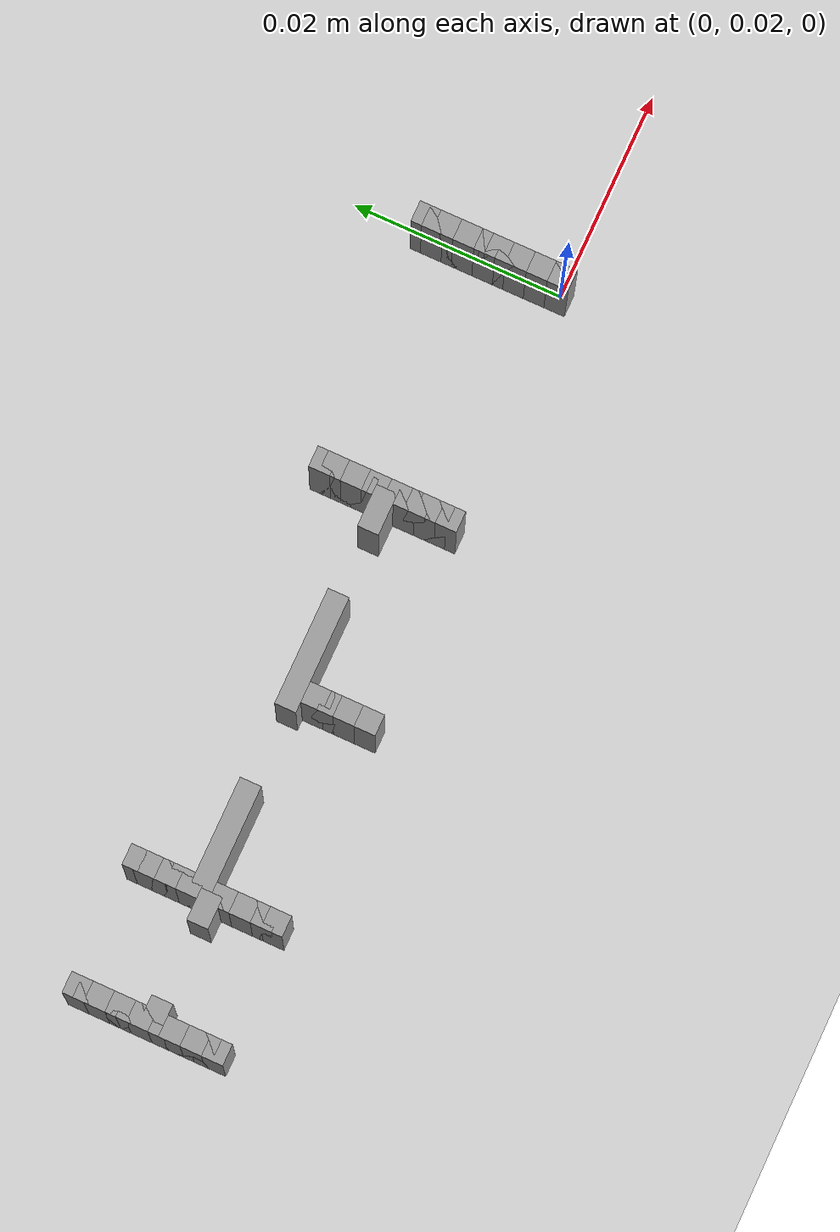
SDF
<sdf version="1.6">
 <world name="GridMap">
  <include><uri>model://sun</uri></include>
  <include><uri>model://ground_plane</uri></include>
  <model name="GridMap">
   <link name="Wall_(43.0,19.0)">
    <collision name="Wall_(43.0,19.0)_Collision">
     <geometry><box><size>0.002 0.002 0.01</size></box></geometry>
     <pose>-0.043000000000000003 0.019 0.005 0 -0 0</pose>
    </collision>
    <inertial>
     <mass>0.5</mass>
     <pose>0 0.01 0 0 0 0</pose>
     <inertia><ixx>0.004</ixx><ixy>0.001</ixy><ixz>0</ixz><iyy>0.006</iyy><iyz>0</iyz><izz>0.007</izz></inertia>
    </inertial>
    <visual name="Wall_(43.0,19.0)_Visual">
     <geometry><box><size>0.002 0.002 0.01</size></box></geometry>
     <pose>-0.043000000000000003 0.019 0.005 0 -0 0</pose>
     <material>
      <script><uri>file://media/materials/scripts/gazebo.material</uri><name>Gazebo/Grey</name></script>
      <ambient>1 1 1 1</ambient>
     </material>
     <meta><layer>0</layer></meta>
    </visual>
   </link>
   <link name="Wall_(62.0,19.0)">
    <collision name="Wall_(62.0,19.0)_Collision">
     <geometry><box><size>0.002 0.002 0.01</size></box></geometry>
     <pose>-0.062 0.019 0.005 0 -0 0</pose>
    </collision>
    <inertial>
     <mass>0.5</mass>
     <pose>0 0.01 0 0 0 0</pose>
     <inertia><ixx>0.004</ixx><ixy>0.001</ixy><ixz>0</ixz><iyy>0.006</iyy><iyz>0</iyz><izz>0.007</izz></inertia>
    </inertial>
    <visual name="Wall_(62.0,19.0)_Visual">
     <geometry><box><size>0.002 0.002 0.01</size></box></geometry>
     <pose>-0.062 0.019 0.005 0 -0 0</pose>
     <material>
      <script><uri>file://media/materials/scripts/gazebo.material</uri><name>Gazebo/Grey</name></script>
      <ambient>1 1 1 1</ambient>
     </material>
     <meta><layer>0</layer></meta>
    </visual>
   </link>
   <link name="Wall_(74.0,19.0)">
    <collision name="Wall_(74.0,19.0)_Collision">
     <geometry><box><size>0.002 0.002 0.01</size></box></geometry>
     <pose>-0.074 0.019 0.005 0 -0 0</pose>
    </collision>
    <inertial>
     <mass>0.5</mass>
     <pose>0 0.01 0 0 0 0</pose>
     <inertia><ixx>0.004</ixx><ixy>0.001</ixy><ixz>0</ixz><iyy>0.006</iyy><iyz>0</iyz><izz>0.007</izz></inertia>
    </inertial>
    <visual name="Wall_(74.0,19.0)_Visual">
     <geometry><box><size>0.002 0.002 0.01</size></box></geometry>
     <pose>-0.074 0.019 0.005 0 -0 0</pose>
     <material>
      <script><uri>file://media/materials/scripts/gazebo.material</uri><name>Gazebo/Grey</name></script>
      <ambient>1 1 1 1</ambient>
     </material>
     <meta><layer>0</layer></meta>
    </visual>
   </link>
   <link name="Wall_(0.5,20.0)">
    <collision name="Wall_(0.5,20.0)_Collision">
     <geometry><box><size>0.002 0.002 0.01</size></box></geometry>
     <pose>-0.0005 0.02 0.005 0 -0 0</pose>
    </collision>
    <inertial>
     <mass>0.5</mass>
     <pose>0 0.01 0 0 0 0</pose>
     <inertia><ixx>0.004</ixx><ixy>0.001</ixy><ixz>0</ixz><iyy>0.006</iyy><iyz>0</iyz><izz>0.007</izz></inertia>
    </inertial>
    <visual name="Wall_(0.5,20.0)_Visual">
     <geometry><box><size>0.002 0.002 0.01</size></box></geometry>
     <pose>-0.0005 0.02 0.005 0 -0 0</pose>
     <material>
      <script><uri>file://media/materials/scripts/gazebo.material</uri><name>Gazebo/Grey</name></script>
      <ambient>1 1 1 1</ambient>
     </material>
     <meta><layer>0</layer></meta>
    </visual>
   </link>
   <link name="Wall_(24.0,20.0)">
    <collision name="Wall_(24.0,20.0)_Collision">
     <geometry><box><size>0.002 0.002 0.01</size></box></geometry>
     <pose>-0.024 0.02 0.005 0 -0 0</pose>
    </collision>
    <inertial>
     <mass>0.5</mass>
     <pose>0 0.01 0 0 0 0</pose>
     <inertia><ixx>0.004</ixx><ixy>0.001</ixy><ixz>0</ixz><iyy>0.006</iyy><iyz>0</iyz><izz>0.007</izz></inertia>
    </inertial>
    <visual name="Wall_(24.0,20.0)_Visual">
     <geometry><box><size>0.002 0.002 0.01</size></box></geometry>
     <pose>-0.024 0.02 0.005 0 -0 0</pose>
     <material>
      <script><uri>file://media/materials/scripts/gazebo.material</uri><name>Gazebo/Grey</name></script>
      <ambient>1 1 1 1</ambient>
     </material>
     <meta><layer>0</layer></meta>
    </visual>
   </link>
   <link name="Wall_(43.0,20.0)">
    <collision name="Wall_(43.0,20.0)_Collision">
     <geometry><box><size>0.002 0.002 0.01</size></box></geometry>
     <pose>-0.043000000000000003 0.02 0.005 0 -0 0</pose>
    </collision>
    <inertial>
     <mass>0.5</mass>
     <pose>0 0.01 0 0 0 0</pose>
     <inertia><ixx>0.004</ixx><ixy>0.001</ixy><ixz>0</ixz><iyy>0.006</iyy><iyz>0</iyz><izz>0.007</izz></inertia>
    </inertial>
    <visual name="Wall_(43.0,20.0)_Visual">
     <geometry><box><size>0.002 0.002 0.01</size></box></geometry>
     <pose>-0.043000000000000003 0.02 0.005 0 -0 0</pose>
     <material>
      <script><uri>file://media/materials/scripts/gazebo.material</uri><name>Gazebo/Grey</name></script>
      <ambient>1 1 1 1</ambient>
     </material>
     <meta><layer>0</layer></meta>
    </visual>
   </link>
   <link name="Wall_(62.0,20.0)">
    <collision name="Wall_(62.0,20.0)_Collision">
     <geometry><box><size>0.002 0.002 0.01</size></box></geometry>
     <pose>-0.062 0.02 0.005 0 -0 0</pose>
    </collision>
    <inertial>
     <mass>0.5</mass>
     <pose>0 0.01 0 0 0 0</pose>
     <inertia><ixx>0.004</ixx><ixy>0.001</ixy><ixz>0</ixz><iyy>0.006</iyy><iyz>0</iyz><izz>0.007</izz></inertia>
    </inertial>
    <visual name="Wall_(62.0,20.0)_Visual">
     <geometry><box><size>0.002 0.002 0.01</size></box></geometry>
     <pose>-0.062 0.02 0.005 0 -0 0</pose>
     <material>
      <script><uri>file://media/materials/scripts/gazebo.material</uri><name>Gazebo/Grey</name></script>
      <ambient>1 1 1 1</ambient>
     </material>
     <meta><layer>0</layer></meta>
    </visual>
   </link>
   <link name="Wall_(74.0,20.0)">
    <collision name="Wall_(74.0,20.0)_Collision">
     <geometry><box><size>0.002 0.002 0.01</size></box></geometry>
     <pose>-0.074 0.02 0.005 0 -0 0</pose>
    </collision>
    <inertial>
     <mass>0.5</mass>
     <pose>0 0.01 0 0 0 0</pose>
     <inertia><ixx>0.004</ixx><ixy>0.001</ixy><ixz>0</ixz><iyy>0.006</iyy><iyz>0</iyz><izz>0.007</izz></inertia>
    </inertial>
    <visual name="Wall_(74.0,20.0)_Visual">
     <geometry><box><size>0.002 0.002 0.01</size></box></geometry>
     <pose>-0.074 0.02 0.005 0 -0 0</pose>
     <material>
      <script><uri>file://media/materials/scripts/gazebo.material</uri><name>Gazebo/Grey</name></script>
      <ambient>1 1 1 1</ambient>
     </material>
     <meta><layer>0</layer></meta>
    </visual>
   </link>
   <link name="Wall_(0.5,21.0)">
    <collision name="Wall_(0.5,21.0)_Collision">
     <geometry><box><size>0.002 0.002 0.01</size></box></geometry>
     <pose>-0.0005 0.021 0.005 0 -0 0</pose>
    </collision>
    <inertial>
     <mass>0.5</mass>
     <pose>0 0.01 0 0 0 0</pose>
     <inertia><ixx>0.004</ixx><ixy>0.001</ixy><ixz>0</ixz><iyy>0.006</iyy><iyz>0</iyz><izz>0.007</izz></inertia>
    </inertial>
    <visual name="Wall_(0.5,21.0)_Visual">
     <geometry><box><size>0.002 0.002 0.01</size></box></geometry>
     <pose>-0.0005 0.021 0.005 0 -0 0</pose>
     <material>
      <script><uri>file://media/materials/scripts/gazebo.material</uri><name>Gazebo/Grey</name></script>
      <ambient>1 1 1 1</ambient>
     </material>
     <meta><layer>0</layer></meta>
    </visual>
   </link>
   <link name="Wall_(24.0,21.0)">
    <collision name="Wall_(24.0,21.0)_Collision">
     <geometry><box><size>0.002 0.002 0.01</size></box></geometry>
     <pose>-0.024 0.021 0.005 0 -0 0</pose>
    </collision>
    <inertial>
     <mass>0.5</mass>
     <pose>0 0.01 0 0 0 0</pose>
     <inertia><ixx>0.004</ixx><ixy>0.001</ixy><ixz>0</ixz><iyy>0.006</iyy><iyz>0</iyz><izz>0.007</izz></inertia>
    </inertial>
    <visual name="Wall_(24.0,21.0)_Visual">
     <geometry><box><size>0.002 0.002 0.01</size></box></geometry>
     <pose>-0.024 0.021 0.005 0 -0 0</pose>
     <material>
      <script><uri>file://media/materials/scripts/gazebo.material</uri><name>Gazebo/Grey</name></script>
      <ambient>1 1 1 1</ambient>
     </material>
     <meta><layer>0</layer></meta>
    </visual>
   </link>
   <link name="Wall_(43.0,21.0)">
    <collision name="Wall_(43.0,21.0)_Collision">
     <geometry><box><size>0.002 0.002 0.01</size></box></geometry>
     <pose>-0.043000000000000003 0.021 0.005 0 -0 0</pose>
    </collision>
    <inertial>
     <mass>0.5</mass>
     <pose>0 0.01 0 0 0 0</pose>
     <inertia><ixx>0.004</ixx><ixy>0.001</ixy><ixz>0</ixz><iyy>0.006</iyy><iyz>0</iyz><izz>0.007</izz></inertia>
    </inertial>
    <visual name="Wall_(43.0,21.0)_Visual">
     <geometry><box><size>0.002 0.002 0.01</size></box></geometry>
     <pose>-0.043000000000000003 0.021 0.005 0 -0 0</pose>
     <material>
      <script><uri>file://media/materials/scripts/gazebo.material</uri><name>Gazebo/Grey</name></script>
      <ambient>1 1 1 1</ambient>
     </material>
     <meta><layer>0</layer></meta>
    </visual>
   </link>
   <link name="Wall_(62.0,21.0)">
    <collision name="Wall_(62.0,21.0)_Collision">
     <geometry><box><size>0.002 0.002 0.01</size></box></geometry>
     <pose>-0.062 0.021 0.005 0 -0 0</pose>
    </collision>
    <inertial>
     <mass>0.5</mass>
     <pose>0 0.01 0 0 0 0</pose>
     <inertia><ixx>0.004</ixx><ixy>0.001</ixy><ixz>0</ixz><iyy>0.006</iyy><iyz>0</iyz><izz>0.007</izz></inertia>
    </inertial>
    <visual name="Wall_(62.0,21.0)_Visual">
     <geometry><box><size>0.002 0.002 0.01</size></box></geometry>
     <pose>-0.062 0.021 0.005 0 -0 0</pose>
     <material>
      <script><uri>file://media/materials/scripts/gazebo.material</uri><name>Gazebo/Grey</name></script>
      <ambient>1 1 1 1</ambient>
     </material>
     <meta><layer>0</layer></meta>
    </visual>
   </link>
   <link name="Wall_(74.0,21.0)">
    <collision name="Wall_(74.0,21.0)_Collision">
     <geometry><box><size>0.002 0.002 0.01</size></box></geometry>
     <pose>-0.074 0.021 0.005 0 -0 0</pose>
    </collision>
    <inertial>
     <mass>0.5</mass>
     <pose>0 0.01 0 0 0 0</pose>
     <inertia><ixx>0.004</ixx><ixy>0.001</ixy><ixz>0</ixz><iyy>0.006</iyy><iyz>0</iyz><izz>0.007</izz></inertia>
    </inertial>
    <visual name="Wall_(74.0,21.0)_Visual">
     <geometry><box><size>0.002 0.002 0.01</size></box></geometry>
     <pose>-0.074 0.021 0.005 0 -0 0</pose>
     <material>
      <script><uri>file://media/materials/scripts/gazebo.material</uri><name>Gazebo/Grey</name></script>
      <ambient>1 1 1 1</ambient>
     </material>
     <meta><layer>0</layer></meta>
    </visual>
   </link>
   <link name="Wall_(0.5,22.0)">
    <collision name="Wall_(0.5,22.0)_Collision">
     <geometry><box><size>0.002 0.002 0.01</size></box></geometry>
     <pose>-0.0005 0.022 0.005 0 -0 0</pose>
    </collision>
    <inertial>
     <mass>0.5</mass>
     <pose>0 0.01 0 0 0 0</pose>
     <inertia><ixx>0.004</ixx><ixy>0.001</ixy><ixz>0</ixz><iyy>0.006</iyy><iyz>0</iyz><izz>0.007</izz></inertia>
    </inertial>
    <visual name="Wall_(0.5,22.0)_Visual">
     <geometry><box><size>0.002 0.002 0.01</size></box></geometry>
     <pose>-0.0005 0.022 0.005 0 -0 0</pose>
     <material>
      <script><uri>file://media/materials/scripts/gazebo.material</uri><name>Gazebo/Grey</name></script>
      <ambient>1 1 1 1</ambient>
     </material>
     <meta><layer>0</layer></meta>
    </visual>
   </link>
   <link name="Wall_(24.0,22.0)">
    <collision name="Wall_(24.0,22.0)_Collision">
     <geometry><box><size>0.002 0.002 0.01</size></box></geometry>
     <pose>-0.024 0.022 0.005 0 -0 0</pose>
    </collision>
    <inertial>
     <mass>0.5</mass>
     <pose>0 0.01 0 0 0 0</pose>
     <inertia><ixx>0.004</ixx><ixy>0.001</ixy><ixz>0</ixz><iyy>0.006</iyy><iyz>0</iyz><izz>0.007</izz></inertia>
    </inertial>
    <visual name="Wall_(24.0,22.0)_Visual">
     <geometry><box><size>0.002 0.002 0.01</size></box></geometry>
     <pose>-0.024 0.022 0.005 0 -0 0</pose>
     <material>
      <script><uri>file://media/materials/scripts/gazebo.material</uri><name>Gazebo/Grey</name></script>
      <ambient>1 1 1 1</ambient>
     </material>
     <meta><layer>0</layer></meta>
    </visual>
   </link>
   <link name="Wall_(43.0,22.0)">
    <collision name="Wall_(43.0,22.0)_Collision">
     <geometry><box><size>0.002 0.002 0.01</size></box></geometry>
     <pose>-0.043000000000000003 0.022 0.005 0 -0 0</pose>
    </collision>
    <inertial>
     <mass>0.5</mass>
     <pose>0 0.01 0 0 0 0</pose>
     <inertia><ixx>0.004</ixx><ixy>0.001</ixy><ixz>0</ixz><iyy>0.006</iyy><iyz>0</iyz><izz>0.007</izz></inertia>
    </inertial>
    <visual name="Wall_(43.0,22.0)_Visual">
     <geometry><box><size>0.002 0.002 0.01</size></box></geometry>
     <pose>-0.043000000000000003 0.022 0.005 0 -0 0</pose>
     <material>
      <script><uri>file://media/materials/scripts/gazebo.material</uri><name>Gazebo/Grey</name></script>
      <ambient>1 1 1 1</ambient>
     </material>
     <meta><layer>0</layer></meta>
    </visual>
   </link>
   <link name="Wall_(62.0,22.0)">
    <collision name="Wall_(62.0,22.0)_Collision">
     <geometry><box><size>0.002 0.002 0.01</size></box></geometry>
     <pose>-0.062 0.022 0.005 0 -0 0</pose>
    </collision>
    <inertial>
     <mass>0.5</mass>
     <pose>0 0.01 0 0 0 0</pose>
     <inertia><ixx>0.004</ixx><ixy>0.001</ixy><ixz>0</ixz><iyy>0.006</iyy><iyz>0</iyz><izz>0.007</izz></inertia>
    </inertial>
    <visual name="Wall_(62.0,22.0)_Visual">
     <geometry><box><size>0.002 0.002 0.01</size></box></geometry>
     <pose>-0.062 0.022 0.005 0 -0 0</pose>
     <material>
      <script><uri>file://media/materials/scripts/gazebo.material</uri><name>Gazebo/Grey</name></script>
      <ambient>1 1 1 1</ambient>
     </material>
     <meta><layer>0</layer></meta>
    </visual>
   </link>
   <link name="Wall_(74.0,22.0)">
    <collision name="Wall_(74.0,22.0)_Collision">
     <geometry><box><size>0.002 0.002 0.01</size></box></geometry>
     <pose>-0.074 0.022 0.005 0 -0 0</pose>
    </collision>
    <inertial>
     <mass>0.5</mass>
     <pose>0 0.01 0 0 0 0</pose>
     <inertia><ixx>0.004</ixx><ixy>0.001</ixy><ixz>0</ixz><iyy>0.006</iyy><iyz>0</iyz><izz>0.007</izz></inertia>
    </inertial>
    <visual name="Wall_(74.0,22.0)_Visual">
     <geometry><box><size>0.002 0.002 0.01</size></box></geometry>
     <pose>-0.074 0.022 0.005 0 -0 0</pose>
     <material>
      <script><uri>file://media/materials/scripts/gazebo.material</uri><name>Gazebo/Grey</name></script>
      <ambient>1 1 1 1</ambient>
     </material>
     <meta><layer>0</layer></meta>
    </visual>
   </link>
   <link name="Wall_(0.5,23.0)">
    <collision name="Wall_(0.5,23.0)_Collision">
     <geometry><box><size>0.002 0.002 0.01</size></box></geometry>
     <pose>-0.0005 0.023 0.005 0 -0 0</pose>
    </collision>
    <inertial>
     <mass>0.5</mass>
     <pose>0 0.01 0 0 0 0</pose>
     <inertia><ixx>0.004</ixx><ixy>0.001</ixy><ixz>0</ixz><iyy>0.006</iyy><iyz>0</iyz><izz>0.007</izz></inertia>
    </inertial>
    <visual name="Wall_(0.5,23.0)_Visual">
     <geometry><box><size>0.002 0.002 0.01</size></box></geometry>
     <pose>-0.0005 0.023 0.005 0 -0 0</pose>
     <material>
      <script><uri>file://media/materials/scripts/gazebo.material</uri><name>Gazebo/Grey</name></script>
      <ambient>1 1 1 1</ambient>
     </material>
     <meta><layer>0</layer></meta>
    </visual>
   </link>
   <link name="Wall_(24.0,23.0)">
    <collision name="Wall_(24.0,23.0)_Collision">
     <geometry><box><size>0.002 0.002 0.01</size></box></geometry>
     <pose>-0.024 0.023 0.005 0 -0 0</pose>
    </collision>
    <inertial>
     <mass>0.5</mass>
     <pose>0 0.01 0 0 0 0</pose>
     <inertia><ixx>0.004</ixx><ixy>0.001</ixy><ixz>0</ixz><iyy>0.006</iyy><iyz>0</iyz><izz>0.007</izz></inertia>
    </inertial>
    <visual name="Wall_(24.0,23.0)_Visual">
     <geometry><box><size>0.002 0.002 0.01</size></box></geometry>
     <pose>-0.024 0.023 0.005 0 -0 0</pose>
     <material>
      <script><uri>file://media/materials/scripts/gazebo.material</uri><name>Gazebo/Grey</name></script>
      <ambient>1 1 1 1</ambient>
     </material>
     <meta><layer>0</layer></meta>
    </visual>
   </link>
   <link name="Wall_(43.0,23.0)">
    <collision name="Wall_(43.0,23.0)_Collision">
     <geometry><box><size>0.002 0.002 0.01</size></box></geometry>
     <pose>-0.043000000000000003 0.023 0.005 0 -0 0</pose>
    </collision>
    <inertial>
     <mass>0.5</mass>
     <pose>0 0.01 0 0 0 0</pose>
     <inertia><ixx>0.004</ixx><ixy>0.001</ixy><ixz>0</ixz><iyy>0.006</iyy><iyz>0</iyz><izz>0.007</izz></inertia>
    </inertial>
    <visual name="Wall_(43.0,23.0)_Visual">
     <geometry><box><size>0.002 0.002 0.01</size></box></geometry>
     <pose>-0.043000000000000003 0.023 0.005 0 -0 0</pose>
     <material>
      <script><uri>file://media/materials/scripts/gazebo.material</uri><name>Gazebo/Grey</name></script>
      <ambient>1 1 1 1</ambient>
     </material>
     <meta><layer>0</layer></meta>
    </visual>
   </link>
   <link name="Wall_(62.0,23.0)">
    <collision name="Wall_(62.0,23.0)_Collision">
     <geometry><box><size>0.002 0.002 0.01</size></box></geometry>
     <pose>-0.062 0.023 0.005 0 -0 0</pose>
    </collision>
    <inertial>
     <mass>0.5</mass>
     <pose>0 0.01 0 0 0 0</pose>
     <inertia><ixx>0.004</ixx><ixy>0.001</ixy><ixz>0</ixz><iyy>0.006</iyy><iyz>0</iyz><izz>0.007</izz></inertia>
    </inertial>
    <visual name="Wall_(62.0,23.0)_Visual">
     <geometry><box><size>0.002 0.002 0.01</size></box></geometry>
     <pose>-0.062 0.023 0.005 0 -0 0</pose>
     <material>
      <script><uri>file://media/materials/scripts/gazebo.material</uri><name>Gazebo/Grey</name></script>
      <ambient>1 1 1 1</ambient>
     </material>
     <meta><layer>0</layer></meta>
    </visual>
   </link>
   <link name="Wall_(74.0,23.0)">
    <collision name="Wall_(74.0,23.0)_Collision">
     <geometry><box><size>0.002 0.002 0.01</size></box></geometry>
     <pose>-0.074 0.023 0.005 0 -0 0</pose>
    </collision>
    <inertial>
     <mass>0.5</mass>
     <pose>0 0.01 0 0 0 0</pose>
     <inertia><ixx>0.004</ixx><ixy>0.001</ixy><ixz>0</ixz><iyy>0.006</iyy><iyz>0</iyz><izz>0.007</izz></inertia>
    </inertial>
    <visual name="Wall_(74.0,23.0)_Visual">
     <geometry><box><size>0.002 0.002 0.01</size></box></geometry>
     <pose>-0.074 0.023 0.005 0 -0 0</pose>
     <material>
      <script><uri>file://media/materials/scripts/gazebo.material</uri><name>Gazebo/Grey</name></script>
      <ambient>1 1 1 1</ambient>
     </material>
     <meta><layer>0</layer></meta>
    </visual>
   </link>
   <link name="Wall_(0.5,24.0)">
    <collision name="Wall_(0.5,24.0)_Collision">
     <geometry><box><size>0.002 0.002 0.01</size></box></geometry>
     <pose>-0.0005 0.024 0.005 0 -0 0</pose>
    </collision>
    <inertial>
     <mass>0.5</mass>
     <pose>0 0.01 0 0 0 0</pose>
     <inertia><ixx>0.004</ixx><ixy>0.001</ixy><ixz>0</ixz><iyy>0.006</iyy><iyz>0</iyz><izz>0.007</izz></inertia>
    </inertial>
    <visual name="Wall_(0.5,24.0)_Visual">
     <geometry><box><size>0.002 0.002 0.01</size></box></geometry>
     <pose>-0.0005 0.024 0.005 0 -0 0</pose>
     <material>
      <script><uri>file://media/materials/scripts/gazebo.material</uri><name>Gazebo/Grey</name></script>
      <ambient>1 1 1 1</ambient>
     </material>
     <meta><layer>0</layer></meta>
    </visual>
   </link>
   <link name="Wall_(24.0,24.0)">
    <collision name="Wall_(24.0,24.0)_Collision">
     <geometry><box><size>0.002 0.002 0.01</size></box></geometry>
     <pose>-0.024 0.024 0.005 0 -0 0</pose>
    </collision>
    <inertial>
     <mass>0.5</mass>
     <pose>0 0.01 0 0 0 0</pose>
     <inertia><ixx>0.004</ixx><ixy>0.001</ixy><ixz>0</ixz><iyy>0.006</iyy><iyz>0</iyz><izz>0.007</izz></inertia>
    </inertial>
    <visual name="Wall_(24.0,24.0)_Visual">
     <geometry><box><size>0.002 0.002 0.01</size></box></geometry>
     <pose>-0.024 0.024 0.005 0 -0 0</pose>
     <material>
      <script><uri>file://media/materials/scripts/gazebo.material</uri><name>Gazebo/Grey</name></script>
      <ambient>1 1 1 1</ambient>
     </material>
     <meta><layer>0</layer></meta>
    </visual>
   </link>
   <link name="Wall_(43.0,24.0)">
    <collision name="Wall_(43.0,24.0)_Collision">
     <geometry><box><size>0.002 0.002 0.01</size></box></geometry>
     <pose>-0.043000000000000003 0.024 0.005 0 -0 0</pose>
    </collision>
    <inertial>
     <mass>0.5</mass>
     <pose>0 0.01 0 0 0 0</pose>
     <inertia><ixx>0.004</ixx><ixy>0.001</ixy><ixz>0</ixz><iyy>0.006</iyy><iyz>0</iyz><izz>0.007</izz></inertia>
    </inertial>
    <visual name="Wall_(43.0,24.0)_Visual">
     <geometry><box><size>0.002 0.002 0.01</size></box></geometry>
     <pose>-0.043000000000000003 0.024 0.005 0 -0 0</pose>
     <material>
      <script><uri>file://media/materials/scripts/gazebo.material</uri><name>Gazebo/Grey</name></script>
      <ambient>1 1 1 1</ambient>
     </material>
     <meta><layer>0</layer></meta>
    </visual>
   </link>
   <link name="Wall_(62.0,24.0)">
    <collision name="Wall_(62.0,24.0)_Collision">
     <geometry><box><size>0.002 0.002 0.01</size></box></geometry>
     <pose>-0.062 0.024 0.005 0 -0 0</pose>
    </collision>
    <inertial>
     <mass>0.5</mass>
     <pose>0 0.01 0 0 0 0</pose>
     <inertia><ixx>0.004</ixx><ixy>0.001</ixy><ixz>0</ixz><iyy>0.006</iyy><iyz>0</iyz><izz>0.007</izz></inertia>
    </inertial>
    <visual name="Wall_(62.0,24.0)_Visual">
     <geometry><box><size>0.002 0.002 0.01</size></box></geometry>
     <pose>-0.062 0.024 0.005 0 -0 0</pose>
     <material>
      <script><uri>file://media/materials/scripts/gazebo.material</uri><name>Gazebo/Grey</name></script>
      <ambient>1 1 1 1</ambient>
     </material>
     <meta><layer>0</layer></meta>
    </visual>
   </link>
   <link name="Wall_(74.0,24.0)">
    <collision name="Wall_(74.0,24.0)_Collision">
     <geometry><box><size>0.002 0.002 0.01</size></box></geometry>
     <pose>-0.074 0.024 0.005 0 -0 0</pose>
    </collision>
    <inertial>
     <mass>0.5</mass>
     <pose>0 0.01 0 0 0 0</pose>
     <inertia><ixx>0.004</ixx><ixy>0.001</ixy><ixz>0</ixz><iyy>0.006</iyy><iyz>0</iyz><izz>0.007</izz></inertia>
    </inertial>
    <visual name="Wall_(74.0,24.0)_Visual">
     <geometry><box><size>0.002 0.002 0.01</size></box></geometry>
     <pose>-0.074 0.024 0.005 0 -0 0</pose>
     <material>
      <script><uri>file://media/materials/scripts/gazebo.material</uri><name>Gazebo/Grey</name></script>
      <ambient>1 1 1 1</ambient>
     </material>
     <meta><layer>0</layer></meta>
    </visual>
   </link>
   <link name="Wall_(0.5,25.0)">
    <collision name="Wall_(0.5,25.0)_Collision">
     <geometry><box><size>0.002 0.002 0.01</size></box></geometry>
     <pose>-0.0005 0.025 0.005 0 -0 0</pose>
    </collision>
    <inertial>
     <mass>0.5</mass>
     <pose>0 0.01 0 0 0 0</pose>
     <inertia><ixx>0.004</ixx><ixy>0.001</ixy><ixz>0</ixz><iyy>0.006</iyy><iyz>0</iyz><izz>0.007</izz></inertia>
    </inertial>
    <visual name="Wall_(0.5,25.0)_Visual">
     <geometry><box><size>0.002 0.002 0.01</size></box></geometry>
     <pose>-0.0005 0.025 0.005 0 -0 0</pose>
     <material>
      <script><uri>file://media/materials/scripts/gazebo.material</uri><name>Gazebo/Grey</name></script>
      <ambient>1 1 1 1</ambient>
     </material>
     <meta><layer>0</layer></meta>
    </visual>
   </link>
   <link name="Wall_(24.0,25.0)">
    <collision name="Wall_(24.0,25.0)_Collision">
     <geometry><box><size>0.002 0.002 0.01</size></box></geometry>
     <pose>-0.024 0.025 0.005 0 -0 0</pose>
    </collision>
    <inertial>
     <mass>0.5</mass>
     <pose>0 0.01 0 0 0 0</pose>
     <inertia><ixx>0.004</ixx><ixy>0.001</ixy><ixz>0</ixz><iyy>0.006</iyy><iyz>0</iyz><izz>0.007</izz></inertia>
    </inertial>
    <visual name="Wall_(24.0,25.0)_Visual">
     <geometry><box><size>0.002 0.002 0.01</size></box></geometry>
     <pose>-0.024 0.025 0.005 0 -0 0</pose>
     <material>
      <script><uri>file://media/materials/scripts/gazebo.material</uri><name>Gazebo/Grey</name></script>
      <ambient>1 1 1 1</ambient>
     </material>
     <meta><layer>0</layer></meta>
    </visual>
   </link>
   <link name="Wall_(63.5,25.0)">
    <collision name="Wall_(63.5,25.0)_Collision">
     <geometry><box><size>0.003 0.002 0.01</size></box></geometry>
     <pose>-0.0635 0.025 0.005 0 -0 0</pose>
    </collision>
    <inertial>
     <mass>0.5</mass>
     <pose>0 0.01 0 0 0 0</pose>
     <inertia><ixx>0.004</ixx><ixy>0.001</ixy><ixz>0</ixz><iyy>0.006</iyy><iyz>0</iyz><izz>0.007</izz></inertia>
    </inertial>
    <visual name="Wall_(63.5,25.0)_Visual">
     <geometry><box><size>0.003 0.002 0.01</size></box></geometry>
     <pose>-0.0635 0.025 0.005 0 -0 0</pose>
     <material>
      <script><uri>file://media/materials/scripts/gazebo.material</uri><name>Gazebo/Grey</name></script>
      <ambient>1 1 1 1</ambient>
     </material>
     <meta><layer>0</layer></meta>
    </visual>
   </link>
   <link name="Wall_(73.0,25.0)">
    <collision name="Wall_(73.0,25.0)_Collision">
     <geometry><box><size>0.002 0.002 0.01</size></box></geometry>
     <pose>-0.073 0.025 0.005 0 -0 0</pose>
    </collision>
    <inertial>
     <mass>0.5</mass>
     <pose>0 0.01 0 0 0 0</pose>
     <inertia><ixx>0.004</ixx><ixy>0.001</ixy><ixz>0</ixz><iyy>0.006</iyy><iyz>0</iyz><izz>0.007</izz></inertia>
    </inertial>
    <visual name="Wall_(73.0,25.0)_Visual">
     <geometry><box><size>0.002 0.002 0.01</size></box></geometry>
     <pose>-0.073 0.025 0.005 0 -0 0</pose>
     <material>
      <script><uri>file://media/materials/scripts/gazebo.material</uri><name>Gazebo/Grey</name></script>
      <ambient>1 1 1 1</ambient>
     </material>
     <meta><layer>0</layer></meta>
    </visual>
   </link>
   <link name="Wall_(0.5,26.0)">
    <collision name="Wall_(0.5,26.0)_Collision">
     <geometry><box><size>0.002 0.002 0.01</size></box></geometry>
     <pose>-0.0005 0.026000000000000002 0.005 0 -0 0</pose>
    </collision>
    <inertial>
     <mass>0.5</mass>
     <pose>0 0.01 0 0 0 0</pose>
     <inertia><ixx>0.004</ixx><ixy>0.001</ixy><ixz>0</ixz><iyy>0.006</iyy><iyz>0</iyz><izz>0.007</izz></inertia>
    </inertial>
    <visual name="Wall_(0.5,26.0)_Visual">
     <geometry><box><size>0.002 0.002 0.01</size></box></geometry>
     <pose>-0.0005 0.026000000000000002 0.005 0 -0 0</pose>
     <material>
      <script><uri>file://media/materials/scripts/gazebo.material</uri><name>Gazebo/Grey</name></script>
      <ambient>1 1 1 1</ambient>
     </material>
     <meta><layer>0</layer></meta>
    </visual>
   </link>
   <link name="Wall_(26.0,26.0)">
    <collision name="Wall_(26.0,26.0)_Collision">
     <geometry><box><size>0.004 0.002 0.01</size></box></geometry>
     <pose>-0.026000000000000002 0.026000000000000002 0.005 0 -0 0</pose>
    </collision>
    <inertial>
     <mass>0.5</mass>
     <pose>0 0.01 0 0 0 0</pose>
     <inertia><ixx>0.004</ixx><ixy>0.001</ixy><ixz>0</ixz><iyy>0.006</iyy><iyz>0</iyz><izz>0.007</izz></inertia>
    </inertial>
    <visual name="Wall_(26.0,26.0)_Visual">
     <geometry><box><size>0.004 0.002 0.01</size></box></geometry>
     <pose>-0.026000000000000002 0.026000000000000002 0.005 0 -0 0</pose>
     <material>
      <script><uri>file://media/materials/scripts/gazebo.material</uri><name>Gazebo/Grey</name></script>
      <ambient>1 1 1 1</ambient>
     </material>
     <meta><layer>0</layer></meta>
    </visual>
   </link>
   <link name="Wall_(39.5,26.0)">
    <collision name="Wall_(39.5,26.0)_Collision">
     <geometry><box><size>0.011 0.002 0.01</size></box></geometry>
     <pose>-0.0395 0.026000000000000002 0.005 0 -0 0</pose>
    </collision>
    <inertial>
     <mass>0.5</mass>
     <pose>0 0.01 0 0 0 0</pose>
     <inertia><ixx>0.004</ixx><ixy>0.001</ixy><ixz>0</ixz><iyy>0.006</iyy><iyz>0</iyz><izz>0.007</izz></inertia>
    </inertial>
    <visual name="Wall_(39.5,26.0)_Visual">
     <geometry><box><size>0.011 0.002 0.01</size></box></geometry>
     <pose>-0.0395 0.026000000000000002 0.005 0 -0 0</pose>
     <material>
      <script><uri>file://media/materials/scripts/gazebo.material</uri><name>Gazebo/Grey</name></script>
      <ambient>1 1 1 1</ambient>
     </material>
     <meta><layer>0</layer></meta>
    </visual>
   </link>
   <link name="Wall_(57.0,26.0)">
    <collision name="Wall_(57.0,26.0)_Collision">
     <geometry><box><size>0.01 0.002 0.01</size></box></geometry>
     <pose>-0.057 0.026000000000000002 0.005 0 -0 0</pose>
    </collision>
    <inertial>
     <mass>0.5</mass>
     <pose>0 0.01 0 0 0 0</pose>
     <inertia><ixx>0.004</ixx><ixy>0.001</ixy><ixz>0</ixz><iyy>0.006</iyy><iyz>0</iyz><izz>0.007</izz></inertia>
    </inertial>
    <visual name="Wall_(57.0,26.0)_Visual">
     <geometry><box><size>0.01 0.002 0.01</size></box></geometry>
     <pose>-0.057 0.026000000000000002 0.005 0 -0 0</pose>
     <material>
      <script><uri>file://media/materials/scripts/gazebo.material</uri><name>Gazebo/Grey</name></script>
      <ambient>1 1 1 1</ambient>
     </material>
     <meta><layer>0</layer></meta>
    </visual>
   </link>
   <link name="Wall_(74.0,26.0)">
    <collision name="Wall_(74.0,26.0)_Collision">
     <geometry><box><size>0.002 0.002 0.01</size></box></geometry>
     <pose>-0.074 0.026000000000000002 0.005 0 -0 0</pose>
    </collision>
    <inertial>
     <mass>0.5</mass>
     <pose>0 0.01 0 0 0 0</pose>
     <inertia><ixx>0.004</ixx><ixy>0.001</ixy><ixz>0</ixz><iyy>0.006</iyy><iyz>0</iyz><izz>0.007</izz></inertia>
    </inertial>
    <visual name="Wall_(74.0,26.0)_Visual">
     <geometry><box><size>0.002 0.002 0.01</size></box></geometry>
     <pose>-0.074 0.026000000000000002 0.005 0 -0 0</pose>
     <material>
      <script><uri>file://media/materials/scripts/gazebo.material</uri><name>Gazebo/Grey</name></script>
      <ambient>1 1 1 1</ambient>
     </material>
     <meta><layer>0</layer></meta>
    </visual>
   </link>
   <link name="Wall_(0.5,27.0)">
    <collision name="Wall_(0.5,27.0)_Collision">
     <geometry><box><size>0.002 0.002 0.01</size></box></geometry>
     <pose>-0.0005 0.027 0.005 0 -0 0</pose>
    </collision>
    <inertial>
     <mass>0.5</mass>
     <pose>0 0.01 0 0 0 0</pose>
     <inertia><ixx>0.004</ixx><ixy>0.001</ixy><ixz>0</ixz><iyy>0.006</iyy><iyz>0</iyz><izz>0.007</izz></inertia>
    </inertial>
    <visual name="Wall_(0.5,27.0)_Visual">
     <geometry><box><size>0.002 0.002 0.01</size></box></geometry>
     <pose>-0.0005 0.027 0.005 0 -0 0</pose>
     <material>
      <script><uri>file://media/materials/scripts/gazebo.material</uri><name>Gazebo/Grey</name></script>
      <ambient>1 1 1 1</ambient>
     </material>
     <meta><layer>0</layer></meta>
    </visual>
   </link>
   <link name="Wall_(24.0,27.0)">
    <collision name="Wall_(24.0,27.0)_Collision">
     <geometry><box><size>0.002 0.002 0.01</size></box></geometry>
     <pose>-0.024 0.027 0.005 0 -0 0</pose>
    </collision>
    <inertial>
     <mass>0.5</mass>
     <pose>0 0.01 0 0 0 0</pose>
     <inertia><ixx>0.004</ixx><ixy>0.001</ixy><ixz>0</ixz><iyy>0.006</iyy><iyz>0</iyz><izz>0.007</izz></inertia>
    </inertial>
    <visual name="Wall_(24.0,27.0)_Visual">
     <geometry><box><size>0.002 0.002 0.01</size></box></geometry>
     <pose>-0.024 0.027 0.005 0 -0 0</pose>
     <material>
      <script><uri>file://media/materials/scripts/gazebo.material</uri><name>Gazebo/Grey</name></script>
      <ambient>1 1 1 1</ambient>
     </material>
     <meta><layer>0</layer></meta>
    </visual>
   </link>
   <link name="Wall_(62.0,27.0)">
    <collision name="Wall_(62.0,27.0)_Collision">
     <geometry><box><size>0.002 0.002 0.01</size></box></geometry>
     <pose>-0.062 0.027 0.005 0 -0 0</pose>
    </collision>
    <inertial>
     <mass>0.5</mass>
     <pose>0 0.01 0 0 0 0</pose>
     <inertia><ixx>0.004</ixx><ixy>0.001</ixy><ixz>0</ixz><iyy>0.006</iyy><iyz>0</iyz><izz>0.007</izz></inertia>
    </inertial>
    <visual name="Wall_(62.0,27.0)_Visual">
     <geometry><box><size>0.002 0.002 0.01</size></box></geometry>
     <pose>-0.062 0.027 0.005 0 -0 0</pose>
     <material>
      <script><uri>file://media/materials/scripts/gazebo.material</uri><name>Gazebo/Grey</name></script>
      <ambient>1 1 1 1</ambient>
     </material>
     <meta><layer>0</layer></meta>
    </visual>
   </link>
   <link name="Wall_(74.0,27.0)">
    <collision name="Wall_(74.0,27.0)_Collision">
     <geometry><box><size>0.002 0.002 0.01</size></box></geometry>
     <pose>-0.074 0.027 0.005 0 -0 0</pose>
    </collision>
    <inertial>
     <mass>0.5</mass>
     <pose>0 0.01 0 0 0 0</pose>
     <inertia><ixx>0.004</ixx><ixy>0.001</ixy><ixz>0</ixz><iyy>0.006</iyy><iyz>0</iyz><izz>0.007</izz></inertia>
    </inertial>
    <visual name="Wall_(74.0,27.0)_Visual">
     <geometry><box><size>0.002 0.002 0.01</size></box></geometry>
     <pose>-0.074 0.027 0.005 0 -0 0</pose>
     <material>
      <script><uri>file://media/materials/scripts/gazebo.material</uri><name>Gazebo/Grey</name></script>
      <ambient>1 1 1 1</ambient>
     </material>
     <meta><layer>0</layer></meta>
    </visual>
   </link>
   <link name="Wall_(0.5,28.0)">
    <collision name="Wall_(0.5,28.0)_Collision">
     <geometry><box><size>0.002 0.002 0.01</size></box></geometry>
     <pose>-0.0005 0.028 0.005 0 -0 0</pose>
    </collision>
    <inertial>
     <mass>0.5</mass>
     <pose>0 0.01 0 0 0 0</pose>
     <inertia><ixx>0.004</ixx><ixy>0.001</ixy><ixz>0</ixz><iyy>0.006</iyy><iyz>0</iyz><izz>0.007</izz></inertia>
    </inertial>
    <visual name="Wall_(0.5,28.0)_Visual">
     <geometry><box><size>0.002 0.002 0.01</size></box></geometry>
     <pose>-0.0005 0.028 0.005 0 -0 0</pose>
     <material>
      <script><uri>file://media/materials/scripts/gazebo.material</uri><name>Gazebo/Grey</name></script>
      <ambient>1 1 1 1</ambient>
     </material>
     <meta><layer>0</layer></meta>
    </visual>
   </link>
   <link name="Wall_(24.0,28.0)">
    <collision name="Wall_(24.0,28.0)_Collision">
     <geometry><box><size>0.002 0.002 0.01</size></box></geometry>
     <pose>-0.024 0.028 0.005 0 -0 0</pose>
    </collision>
    <inertial>
     <mass>0.5</mass>
     <pose>0 0.01 0 0 0 0</pose>
     <inertia><ixx>0.004</ixx><ixy>0.001</ixy><ixz>0</ixz><iyy>0.006</iyy><iyz>0</iyz><izz>0.007</izz></inertia>
    </inertial>
    <visual name="Wall_(24.0,28.0)_Visual">
     <geometry><box><size>0.002 0.002 0.01</size></box></geometry>
     <pose>-0.024 0.028 0.005 0 -0 0</pose>
     <material>
      <script><uri>file://media/materials/scripts/gazebo.material</uri><name>Gazebo/Grey</name></script>
      <ambient>1 1 1 1</ambient>
     </material>
     <meta><layer>0</layer></meta>
    </visual>
   </link>
   <link name="Wall_(62.0,28.0)">
    <collision name="Wall_(62.0,28.0)_Collision">
     <geometry><box><size>0.002 0.002 0.01</size></box></geometry>
     <pose>-0.062 0.028 0.005 0 -0 0</pose>
    </collision>
    <inertial>
     <mass>0.5</mass>
     <pose>0 0.01 0 0 0 0</pose>
     <inertia><ixx>0.004</ixx><ixy>0.001</ixy><ixz>0</ixz><iyy>0.006</iyy><iyz>0</iyz><izz>0.007</izz></inertia>
    </inertial>
    <visual name="Wall_(62.0,28.0)_Visual">
     <geometry><box><size>0.002 0.002 0.01</size></box></geometry>
     <pose>-0.062 0.028 0.005 0 -0 0</pose>
     <material>
      <script><uri>file://media/materials/scripts/gazebo.material</uri><name>Gazebo/Grey</name></script>
      <ambient>1 1 1 1</ambient>
     </material>
     <meta><layer>0</layer></meta>
    </visual>
   </link>
   <link name="Wall_(74.0,28.0)">
    <collision name="Wall_(74.0,28.0)_Collision">
     <geometry><box><size>0.002 0.002 0.01</size></box></geometry>
     <pose>-0.074 0.028 0.005 0 -0 0</pose>
    </collision>
    <inertial>
     <mass>0.5</mass>
     <pose>0 0.01 0 0 0 0</pose>
     <inertia><ixx>0.004</ixx><ixy>0.001</ixy><ixz>0</ixz><iyy>0.006</iyy><iyz>0</iyz><izz>0.007</izz></inertia>
    </inertial>
    <visual name="Wall_(74.0,28.0)_Visual">
     <geometry><box><size>0.002 0.002 0.01</size></box></geometry>
     <pose>-0.074 0.028 0.005 0 -0 0</pose>
     <material>
      <script><uri>file://media/materials/scripts/gazebo.material</uri><name>Gazebo/Grey</name></script>
      <ambient>1 1 1 1</ambient>
     </material>
     <meta><layer>0</layer></meta>
    </visual>
   </link>
   <link name="Wall_(0.5,29.0)">
    <collision name="Wall_(0.5,29.0)_Collision">
     <geometry><box><size>0.002 0.002 0.01</size></box></geometry>
     <pose>-0.0005 0.029 0.005 0 -0 0</pose>
    </collision>
    <inertial>
     <mass>0.5</mass>
     <pose>0 0.01 0 0 0 0</pose>
     <inertia><ixx>0.004</ixx><ixy>0.001</ixy><ixz>0</ixz><iyy>0.006</iyy><iyz>0</iyz><izz>0.007</izz></inertia>
    </inertial>
    <visual name="Wall_(0.5,29.0)_Visual">
     <geometry><box><size>0.002 0.002 0.01</size></box></geometry>
     <pose>-0.0005 0.029 0.005 0 -0 0</pose>
     <material>
      <script><uri>file://media/materials/scripts/gazebo.material</uri><name>Gazebo/Grey</name></script>
      <ambient>1 1 1 1</ambient>
     </material>
     <meta><layer>0</layer></meta>
    </visual>
   </link>
   <link name="Wall_(24.0,29.0)">
    <collision name="Wall_(24.0,29.0)_Collision">
     <geometry><box><size>0.002 0.002 0.01</size></box></geometry>
     <pose>-0.024 0.029 0.005 0 -0 0</pose>
    </collision>
    <inertial>
     <mass>0.5</mass>
     <pose>0 0.01 0 0 0 0</pose>
     <inertia><ixx>0.004</ixx><ixy>0.001</ixy><ixz>0</ixz><iyy>0.006</iyy><iyz>0</iyz><izz>0.007</izz></inertia>
    </inertial>
    <visual name="Wall_(24.0,29.0)_Visual">
     <geometry><box><size>0.002 0.002 0.01</size></box></geometry>
     <pose>-0.024 0.029 0.005 0 -0 0</pose>
     <material>
      <script><uri>file://media/materials/scripts/gazebo.material</uri><name>Gazebo/Grey</name></script>
      <ambient>1 1 1 1</ambient>
     </material>
     <meta><layer>0</layer></meta>
    </visual>
   </link>
   <link name="Wall_(62.0,29.0)">
    <collision name="Wall_(62.0,29.0)_Collision">
     <geometry><box><size>0.002 0.002 0.01</size></box></geometry>
     <pose>-0.062 0.029 0.005 0 -0 0</pose>
    </collision>
    <inertial>
     <mass>0.5</mass>
     <pose>0 0.01 0 0 0 0</pose>
     <inertia><ixx>0.004</ixx><ixy>0.001</ixy><ixz>0</ixz><iyy>0.006</iyy><iyz>0</iyz><izz>0.007</izz></inertia>
    </inertial>
    <visual name="Wall_(62.0,29.0)_Visual">
     <geometry><box><size>0.002 0.002 0.01</size></box></geometry>
     <pose>-0.062 0.029 0.005 0 -0 0</pose>
     <material>
      <script><uri>file://media/materials/scripts/gazebo.material</uri><name>Gazebo/Grey</name></script>
      <ambient>1 1 1 1</ambient>
     </material>
     <meta><layer>0</layer></meta>
    </visual>
   </link>
   <link name="Wall_(74.0,29.0)">
    <collision name="Wall_(74.0,29.0)_Collision">
     <geometry><box><size>0.002 0.002 0.01</size></box></geometry>
     <pose>-0.074 0.029 0.005 0 -0 0</pose>
    </collision>
    <inertial>
     <mass>0.5</mass>
     <pose>0 0.01 0 0 0 0</pose>
     <inertia><ixx>0.004</ixx><ixy>0.001</ixy><ixz>0</ixz><iyy>0.006</iyy><iyz>0</iyz><izz>0.007</izz></inertia>
    </inertial>
    <visual name="Wall_(74.0,29.0)_Visual">
     <geometry><box><size>0.002 0.002 0.01</size></box></geometry>
     <pose>-0.074 0.029 0.005 0 -0 0</pose>
     <material>
      <script><uri>file://media/materials/scripts/gazebo.material</uri><name>Gazebo/Grey</name></script>
      <ambient>1 1 1 1</ambient>
     </material>
     <meta><layer>0</layer></meta>
    </visual>
   </link>
   <link name="Wall_(0.5,30.0)">
    <collision name="Wall_(0.5,30.0)_Collision">
     <geometry><box><size>0.002 0.002 0.01</size></box></geometry>
     <pose>-0.0005 0.03 0.005 0 -0 0</pose>
    </collision>
    <inertial>
     <mass>0.5</mass>
     <pose>0 0.01 0 0 0 0</pose>
     <inertia><ixx>0.004</ixx><ixy>0.001</ixy><ixz>0</ixz><iyy>0.006</iyy><iyz>0</iyz><izz>0.007</izz></inertia>
    </inertial>
    <visual name="Wall_(0.5,30.0)_Visual">
     <geometry><box><size>0.002 0.002 0.01</size></box></geometry>
     <pose>-0.0005 0.03 0.005 0 -0 0</pose>
     <material>
      <script><uri>file://media/materials/scripts/gazebo.material</uri><name>Gazebo/Grey</name></script>
      <ambient>1 1 1 1</ambient>
     </material>
     <meta><layer>0</layer></meta>
    </visual>
   </link>
   <link name="Wall_(24.0,30.0)">
    <collision name="Wall_(24.0,30.0)_Collision">
     <geometry><box><size>0.002 0.002 0.01</size></box></geometry>
     <pose>-0.024 0.03 0.005 0 -0 0</pose>
    </collision>
    <inertial>
     <mass>0.5</mass>
     <pose>0 0.01 0 0 0 0</pose>
     <inertia><ixx>0.004</ixx><ixy>0.001</ixy><ixz>0</ixz><iyy>0.006</iyy><iyz>0</iyz><izz>0.007</izz></inertia>
    </inertial>
    <visual name="Wall_(24.0,30.0)_Visual">
     <geometry><box><size>0.002 0.002 0.01</size></box></geometry>
     <pose>-0.024 0.03 0.005 0 -0 0</pose>
     <material>
      <script><uri>file://media/materials/scripts/gazebo.material</uri><name>Gazebo/Grey</name></script>
      <ambient>1 1 1 1</ambient>
     </material>
     <meta><layer>0</layer></meta>
    </visual>
   </link>
   <link name="Wall_(62.0,30.0)">
    <collision name="Wall_(62.0,30.0)_Collision">
     <geometry><box><size>0.002 0.002 0.01</size></box></geometry>
     <pose>-0.062 0.03 0.005 0 -0 0</pose>
    </collision>
    <inertial>
     <mass>0.5</mass>
     <pose>0 0.01 0 0 0 0</pose>
     <inertia><ixx>0.004</ixx><ixy>0.001</ixy><ixz>0</ixz><iyy>0.006</iyy><iyz>0</iyz><izz>0.007</izz></inertia>
    </inertial>
    <visual name="Wall_(62.0,30.0)_Visual">
     <geometry><box><size>0.002 0.002 0.01</size></box></geometry>
     <pose>-0.062 0.03 0.005 0 -0 0</pose>
     <material>
      <script><uri>file://media/materials/scripts/gazebo.material</uri><name>Gazebo/Grey</name></script>
      <ambient>1 1 1 1</ambient>
     </material>
     <meta><layer>0</layer></meta>
    </visual>
   </link>
   <link name="Wall_(74.0,30.0)">
    <collision name="Wall_(74.0,30.0)_Collision">
     <geometry><box><size>0.002 0.002 0.01</size></box></geometry>
     <pose>-0.074 0.03 0.005 0 -0 0</pose>
    </collision>
    <inertial>
     <mass>0.5</mass>
     <pose>0 0.01 0 0 0 0</pose>
     <inertia><ixx>0.004</ixx><ixy>0.001</ixy><ixz>0</ixz><iyy>0.006</iyy><iyz>0</iyz><izz>0.007</izz></inertia>
    </inertial>
    <visual name="Wall_(74.0,30.0)_Visual">
     <geometry><box><size>0.002 0.002 0.01</size></box></geometry>
     <pose>-0.074 0.03 0.005 0 -0 0</pose>
     <material>
      <script><uri>file://media/materials/scripts/gazebo.material</uri><name>Gazebo/Grey</name></script>
      <ambient>1 1 1 1</ambient>
     </material>
     <meta><layer>0</layer></meta>
    </visual>
   </link>
   <link name="Wall_(0.5,31.0)">
    <collision name="Wall_(0.5,31.0)_Collision">
     <geometry><box><size>0.002 0.002 0.01</size></box></geometry>
     <pose>-0.0005 0.031 0.005 0 -0 0</pose>
    </collision>
    <inertial>
     <mass>0.5</mass>
     <pose>0 0.01 0 0 0 0</pose>
     <inertia><ixx>0.004</ixx><ixy>0.001</ixy><ixz>0</ixz><iyy>0.006</iyy><iyz>0</iyz><izz>0.007</izz></inertia>
    </inertial>
    <visual name="Wall_(0.5,31.0)_Visual">
     <geometry><box><size>0.002 0.002 0.01</size></box></geometry>
     <pose>-0.0005 0.031 0.005 0 -0 0</pose>
     <material>
      <script><uri>file://media/materials/scripts/gazebo.material</uri><name>Gazebo/Grey</name></script>
      <ambient>1 1 1 1</ambient>
     </material>
     <meta><layer>0</layer></meta>
    </visual>
   </link>
   <link name="Wall_(24.0,31.0)">
    <collision name="Wall_(24.0,31.0)_Collision">
     <geometry><box><size>0.002 0.002 0.01</size></box></geometry>
     <pose>-0.024 0.031 0.005 0 -0 0</pose>
    </collision>
    <inertial>
     <mass>0.5</mass>
     <pose>0 0.01 0 0 0 0</pose>
     <inertia><ixx>0.004</ixx><ixy>0.001</ixy><ixz>0</ixz><iyy>0.006</iyy><iyz>0</iyz><izz>0.007</izz></inertia>
    </inertial>
    <visual name="Wall_(24.0,31.0)_Visual">
     <geometry><box><size>0.002 0.002 0.01</size></box></geometry>
     <pose>-0.024 0.031 0.005 0 -0 0</pose>
     <material>
      <script><uri>file://media/materials/scripts/gazebo.material</uri><name>Gazebo/Grey</name></script>
      <ambient>1 1 1 1</ambient>
     </material>
     <meta><layer>0</layer></meta>
    </visual>
   </link>
   <link name="Wall_(62.0,31.0)">
    <collision name="Wall_(62.0,31.0)_Collision">
     <geometry><box><size>0.002 0.002 0.01</size></box></geometry>
     <pose>-0.062 0.031 0.005 0 -0 0</pose>
    </collision>
    <inertial>
     <mass>0.5</mass>
     <pose>0 0.01 0 0 0 0</pose>
     <inertia><ixx>0.004</ixx><ixy>0.001</ixy><ixz>0</ixz><iyy>0.006</iyy><iyz>0</iyz><izz>0.007</izz></inertia>
    </inertial>
    <visual name="Wall_(62.0,31.0)_Visual">
     <geometry><box><size>0.002 0.002 0.01</size></box></geometry>
     <pose>-0.062 0.031 0.005 0 -0 0</pose>
     <material>
      <script><uri>file://media/materials/scripts/gazebo.material</uri><name>Gazebo/Grey</name></script>
      <ambient>1 1 1 1</ambient>
     </material>
     <meta><layer>0</layer></meta>
    </visual>
   </link>
   <link name="Wall_(74.0,31.0)">
    <collision name="Wall_(74.0,31.0)_Collision">
     <geometry><box><size>0.002 0.002 0.01</size></box></geometry>
     <pose>-0.074 0.031 0.005 0 -0 0</pose>
    </collision>
    <inertial>
     <mass>0.5</mass>
     <pose>0 0.01 0 0 0 0</pose>
     <inertia><ixx>0.004</ixx><ixy>0.001</ixy><ixz>0</ixz><iyy>0.006</iyy><iyz>0</iyz><izz>0.007</izz></inertia>
    </inertial>
    <visual name="Wall_(74.0,31.0)_Visual">
     <geometry><box><size>0.002 0.002 0.01</size></box></geometry>
     <pose>-0.074 0.031 0.005 0 -0 0</pose>
     <material>
      <script><uri>file://media/materials/scripts/gazebo.material</uri><name>Gazebo/Grey</name></script>
      <ambient>1 1 1 1</ambient>
     </material>
     <meta><layer>0</layer></meta>
    </visual>
   </link>
   <link name="Wall_(0.5,32.0)">
    <collision name="Wall_(0.5,32.0)_Collision">
     <geometry><box><size>0.002 0.002 0.01</size></box></geometry>
     <pose>-0.0005 0.032 0.005 0 -0 0</pose>
    </collision>
    <inertial>
     <mass>0.5</mass>
     <pose>0 0.01 0 0 0 0</pose>
     <inertia><ixx>0.004</ixx><ixy>0.001</ixy><ixz>0</ixz><iyy>0.006</iyy><iyz>0</iyz><izz>0.007</izz></inertia>
    </inertial>
    <visual name="Wall_(0.5,32.0)_Visual">
     <geometry><box><size>0.002 0.002 0.01</size></box></geometry>
     <pose>-0.0005 0.032 0.005 0 -0 0</pose>
     <material>
      <script><uri>file://media/materials/scripts/gazebo.material</uri><name>Gazebo/Grey</name></script>
      <ambient>1 1 1 1</ambient>
     </material>
     <meta><layer>0</layer></meta>
    </visual>
   </link>
   <link name="Wall_(24.0,32.0)">
    <collision name="Wall_(24.0,32.0)_Collision">
     <geometry><box><size>0.002 0.002 0.01</size></box></geometry>
     <pose>-0.024 0.032 0.005 0 -0 0</pose>
    </collision>
    <inertial>
     <mass>0.5</mass>
     <pose>0 0.01 0 0 0 0</pose>
     <inertia><ixx>0.004</ixx><ixy>0.001</ixy><ixz>0</ixz><iyy>0.006</iyy><iyz>0</iyz><izz>0.007</izz></inertia>
    </inertial>
    <visual name="Wall_(24.0,32.0)_Visual">
     <geometry><box><size>0.002 0.002 0.01</size></box></geometry>
     <pose>-0.024 0.032 0.005 0 -0 0</pose>
     <material>
      <script><uri>file://media/materials/scripts/gazebo.material</uri><name>Gazebo/Grey</name></script>
      <ambient>1 1 1 1</ambient>
     </material>
     <meta><layer>0</layer></meta>
    </visual>
   </link>
   <link name="Wall_(62.0,32.0)">
    <collision name="Wall_(62.0,32.0)_Collision">
     <geometry><box><size>0.002 0.002 0.01</size></box></geometry>
     <pose>-0.062 0.032 0.005 0 -0 0</pose>
    </collision>
    <inertial>
     <mass>0.5</mass>
     <pose>0 0.01 0 0 0 0</pose>
     <inertia><ixx>0.004</ixx><ixy>0.001</ixy><ixz>0</ixz><iyy>0.006</iyy><iyz>0</iyz><izz>0.007</izz></inertia>
    </inertial>
    <visual name="Wall_(62.0,32.0)_Visual">
     <geometry><box><size>0.002 0.002 0.01</size></box></geometry>
     <pose>-0.062 0.032 0.005 0 -0 0</pose>
     <material>
      <script><uri>file://media/materials/scripts/gazebo.material</uri><name>Gazebo/Grey</name></script>
      <ambient>1 1 1 1</ambient>
     </material>
     <meta><layer>0</layer></meta>
    </visual>
   </link>
   <link name="Wall_(74.0,32.0)">
    <collision name="Wall_(74.0,32.0)_Collision">
     <geometry><box><size>0.002 0.002 0.01</size></box></geometry>
     <pose>-0.074 0.032 0.005 0 -0 0</pose>
    </collision>
    <inertial>
     <mass>0.5</mass>
     <pose>0 0.01 0 0 0 0</pose>
     <inertia><ixx>0.004</ixx><ixy>0.001</ixy><ixz>0</ixz><iyy>0.006</iyy><iyz>0</iyz><izz>0.007</izz></inertia>
    </inertial>
    <visual name="Wall_(74.0,32.0)_Visual">
     <geometry><box><size>0.002 0.002 0.01</size></box></geometry>
     <pose>-0.074 0.032 0.005 0 -0 0</pose>
     <material>
      <script><uri>file://media/materials/scripts/gazebo.material</uri><name>Gazebo/Grey</name></script>
      <ambient>1 1 1 1</ambient>
     </material>
     <meta><layer>0</layer></meta>
    </visual>
   </link>
   <link name="Wall_(0.5,33.0)">
    <collision name="Wall_(0.5,33.0)_Collision">
     <geometry><box><size>0.002 0.002 0.01</size></box></geometry>
     <pose>-0.0005 0.033 0.005 0 -0 0</pose>
    </collision>
    <inertial>
     <mass>0.5</mass>
     <pose>0 0.01 0 0 0 0</pose>
     <inertia><ixx>0.004</ixx><ixy>0.001</ixy><ixz>0</ixz><iyy>0.006</iyy><iyz>0</iyz><izz>0.007</izz></inertia>
    </inertial>
    <visual name="Wall_(0.5,33.0)_Visual">
     <geometry><box><size>0.002 0.002 0.01</size></box></geometry>
     <pose>-0.0005 0.033 0.005 0 -0 0</pose>
     <material>
      <script><uri>file://media/materials/scripts/gazebo.material</uri><name>Gazebo/Grey</name></script>
      <ambient>1 1 1 1</ambient>
     </material>
     <meta><layer>0</layer></meta>
    </visual>
   </link>
   <static>1</static>
  </model>
 </world>
</sdf>
